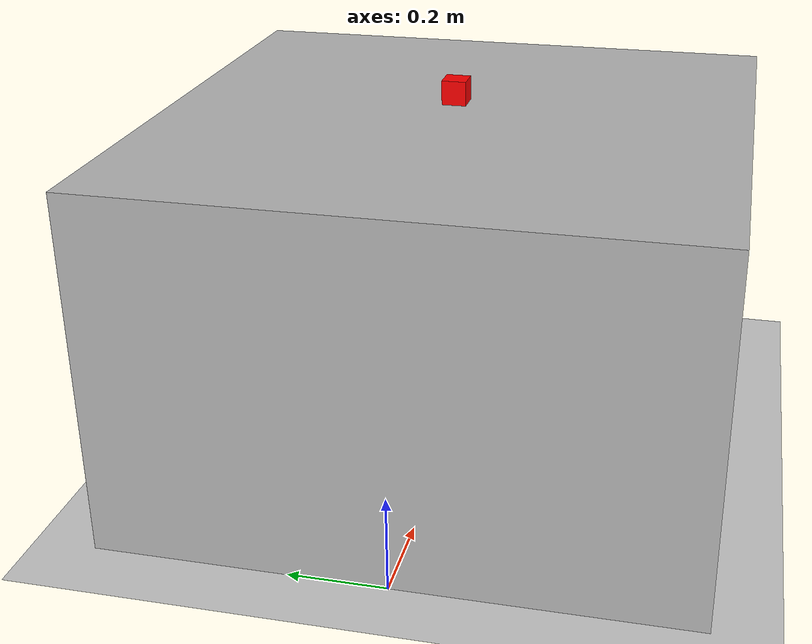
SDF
<?xml version="1.0" ?>
<sdf version="1.7">

  <world name="pick_place_world">

    <!-- Light -->
    <light type="directional" name="sun">
      <pose>0 0 10 0 0 0</pose>
      <diffuse>1 1 1 1</diffuse>
      <specular>0.2 0.2 0.2 1</specular>
      <direction>-0.5 0.5 -1</direction>
    </light>

    <!-- Ground Plane -->
    <model name="ground_plane">
      <static>true</static>
      <link name="link">

        <collision name="collision">
          <geometry>
            <plane>
              <normal>0 0 1</normal>
              <size>20 20</size>
            </plane>
          </geometry>
        </collision>

        <visual name="visual">
          <geometry>
            <plane>
              <normal>0 0 1</normal>
              <size>20 20</size>
            </plane>
          </geometry>
        </visual>

      </link>
    </model>

    <!-- Table -->
    <model name="table">
      <static>true</static>
      <pose>0.6 0 0.375 0 0 0</pose>

      <link name="link">

        <collision name="collision">
          <geometry>
            <box>
              <size>1.2 1.2 0.75</size>
            </box>
          </geometry>
        </collision>

        <visual name="visual">
          <geometry>
            <box>
              <size>1.2 1.2 0.75</size>
            </box>
          </geometry>
        </visual>

      </link>
    </model>

    <!-- Cube -->
    <model name="cube">
      <pose>0.6 0 0.80 0 0 0</pose>

      <link name="link">

        <inertial>
          <mass>0.3</mass>
          <inertia>
            <ixx>0.0001</ixx>
            <iyy>0.0001</iyy>
            <izz>0.0001</izz>
          </inertia>
        </inertial>

        <collision name="collision">
          <geometry>
            <box>
              <size>0.05 0.05 0.05</size>
            </box>
          </geometry>
        </collision>

        <visual name="visual">
          <geometry>
            <box>
              <size>0.05 0.05 0.05</size>
            </box>
          </geometry>
          <material>
            <ambient>1 0 0 1</ambient>
          </material>
        </visual>

      </link>
    </model>

  </world>
</sdf>
